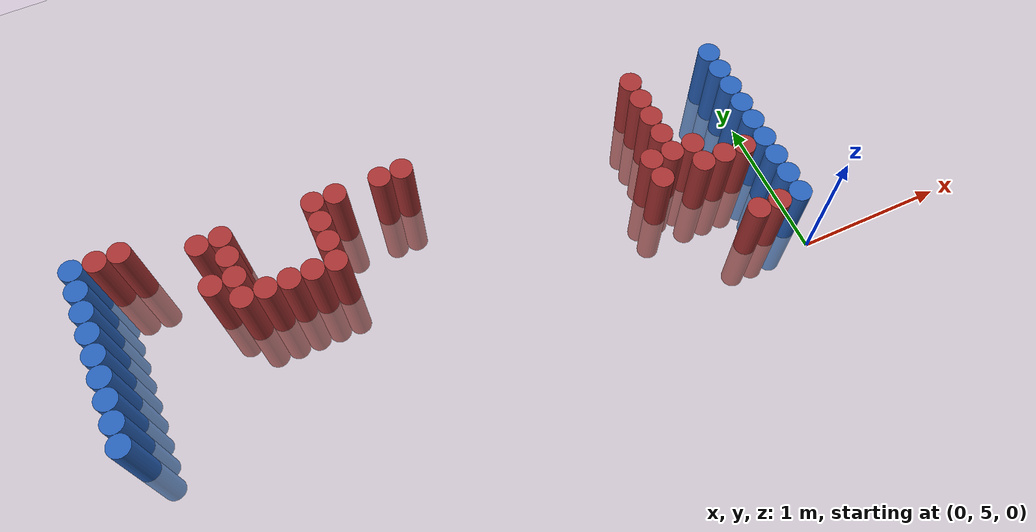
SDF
<sdf version="1.6">
 <world name="default">
  <model name="ground_plane">
   <static>1</static>
   <link name="link">
    <collision name="collision">
     <geometry><plane><normal>0 0 1</normal><size>100 100</size></plane></geometry>
     <surface><friction><ode><mu>100</mu><mu2>50</mu2></ode></friction></surface>
    </collision>
    <visual name="visual">
     <cast_shadows>0</cast_shadows>
     <geometry><plane><normal>0 0 1</normal><size>100 100</size></plane></geometry>
     <material>
      <script><uri>file://media/materials/scripts/gazebo.material</uri><name>Gazebo/Grey</name></script>
     </material>
    </visual>
   </link>
  </model>
  <model name="unit_cylinder_97">
   <static>1</static>
   <pose>-4.425000 5.325000 0.000000 0.000000 0.000000 0.000000</pose>
   <link name="link">
    <inertial>
     <mass>1</mass>
     <inertia><ixx>0.145833</ixx><ixy>0</ixy><ixz>0</ixz><iyy>0.145833</iyy><iyz>0</iyz><izz>0.125</izz></inertia>
    </inertial>
    <collision name="collision">
     <geometry><cylinder><radius>0.075000</radius><length>1</length></cylinder></geometry>
    </collision>
    <visual name="visual">
     <geometry><cylinder><radius>0.075000</radius><length>1</length></cylinder></geometry>
     <material>
      <ambient>0.152000 0.379000 0.720000 1</ambient>
      <diffuse>0.152000 0.379000 0.720000 1</diffuse>
     </material>
     <material>
      <script><name>Gazebo/Grey</name><uri>file://media/materials/scripts/gazebo.material</uri></script>
     </material>
    </visual>
   </link>
  </model>
  <model name="unit_cylinder_98">
   <static>1</static>
   <pose>-4.425000 5.475000 0.000000 0.000000 0.000000 0.000000</pose>
   <link name="link">
    <inertial>
     <mass>1</mass>
     <inertia><ixx>0.145833</ixx><ixy>0</ixy><ixz>0</ixz><iyy>0.145833</iyy><iyz>0</iyz><izz>0.125</izz></inertia>
    </inertial>
    <collision name="collision">
     <geometry><cylinder><radius>0.075000</radius><length>1</length></cylinder></geometry>
    </collision>
    <visual name="visual">
     <geometry><cylinder><radius>0.075000</radius><length>1</length></cylinder></geometry>
     <material>
      <ambient>0.152000 0.379000 0.720000 1</ambient>
      <diffuse>0.152000 0.379000 0.720000 1</diffuse>
     </material>
     <material>
      <script><name>Gazebo/Grey</name><uri>file://media/materials/scripts/gazebo.material</uri></script>
     </material>
    </visual>
   </link>
  </model>
  <model name="unit_cylinder_99">
   <static>1</static>
   <pose>-4.425000 5.625000 0.000000 0.000000 0.000000 0.000000</pose>
   <link name="link">
    <inertial>
     <mass>1</mass>
     <inertia><ixx>0.145833</ixx><ixy>0</ixy><ixz>0</ixz><iyy>0.145833</iyy><iyz>0</iyz><izz>0.125</izz></inertia>
    </inertial>
    <collision name="collision">
     <geometry><cylinder><radius>0.075000</radius><length>1</length></cylinder></geometry>
    </collision>
    <visual name="visual">
     <geometry><cylinder><radius>0.075000</radius><length>1</length></cylinder></geometry>
     <material>
      <ambient>0.152000 0.379000 0.720000 1</ambient>
      <diffuse>0.152000 0.379000 0.720000 1</diffuse>
     </material>
     <material>
      <script><name>Gazebo/Grey</name><uri>file://media/materials/scripts/gazebo.material</uri></script>
     </material>
    </visual>
   </link>
  </model>
  <model name="unit_cylinder_100">
   <static>1</static>
   <pose>-4.425000 5.775000 0.000000 0.000000 0.000000 0.000000</pose>
   <link name="link">
    <inertial>
     <mass>1</mass>
     <inertia><ixx>0.145833</ixx><ixy>0</ixy><ixz>0</ixz><iyy>0.145833</iyy><iyz>0</iyz><izz>0.125</izz></inertia>
    </inertial>
    <collision name="collision">
     <geometry><cylinder><radius>0.075000</radius><length>1</length></cylinder></geometry>
    </collision>
    <visual name="visual">
     <geometry><cylinder><radius>0.075000</radius><length>1</length></cylinder></geometry>
     <material>
      <ambient>0.152000 0.379000 0.720000 1</ambient>
      <diffuse>0.152000 0.379000 0.720000 1</diffuse>
     </material>
     <material>
      <script><name>Gazebo/Grey</name><uri>file://media/materials/scripts/gazebo.material</uri></script>
     </material>
    </visual>
   </link>
  </model>
  <model name="unit_cylinder_101">
   <static>1</static>
   <pose>-4.425000 5.925000 0.000000 0.000000 0.000000 0.000000</pose>
   <link name="link">
    <inertial>
     <mass>1</mass>
     <inertia><ixx>0.145833</ixx><ixy>0</ixy><ixz>0</ixz><iyy>0.145833</iyy><iyz>0</iyz><izz>0.125</izz></inertia>
    </inertial>
    <collision name="collision">
     <geometry><cylinder><radius>0.075000</radius><length>1</length></cylinder></geometry>
    </collision>
    <visual name="visual">
     <geometry><cylinder><radius>0.075000</radius><length>1</length></cylinder></geometry>
     <material>
      <ambient>0.152000 0.379000 0.720000 1</ambient>
      <diffuse>0.152000 0.379000 0.720000 1</diffuse>
     </material>
     <material>
      <script><name>Gazebo/Grey</name><uri>file://media/materials/scripts/gazebo.material</uri></script>
     </material>
    </visual>
   </link>
  </model>
  <model name="unit_cylinder_102">
   <static>1</static>
   <pose>-4.425000 6.075000 0.000000 0.000000 0.000000 0.000000</pose>
   <link name="link">
    <inertial>
     <mass>1</mass>
     <inertia><ixx>0.145833</ixx><ixy>0</ixy><ixz>0</ixz><iyy>0.145833</iyy><iyz>0</iyz><izz>0.125</izz></inertia>
    </inertial>
    <collision name="collision">
     <geometry><cylinder><radius>0.075000</radius><length>1</length></cylinder></geometry>
    </collision>
    <visual name="visual">
     <geometry><cylinder><radius>0.075000</radius><length>1</length></cylinder></geometry>
     <material>
      <ambient>0.152000 0.379000 0.720000 1</ambient>
      <diffuse>0.152000 0.379000 0.720000 1</diffuse>
     </material>
     <material>
      <script><name>Gazebo/Grey</name><uri>file://media/materials/scripts/gazebo.material</uri></script>
     </material>
    </visual>
   </link>
  </model>
  <model name="unit_cylinder_103">
   <static>1</static>
   <pose>-4.425000 6.225000 0.000000 0.000000 0.000000 0.000000</pose>
   <link name="link">
    <inertial>
     <mass>1</mass>
     <inertia><ixx>0.145833</ixx><ixy>0</ixy><ixz>0</ixz><iyy>0.145833</iyy><iyz>0</iyz><izz>0.125</izz></inertia>
    </inertial>
    <collision name="collision">
     <geometry><cylinder><radius>0.075000</radius><length>1</length></cylinder></geometry>
    </collision>
    <visual name="visual">
     <geometry><cylinder><radius>0.075000</radius><length>1</length></cylinder></geometry>
     <material>
      <ambient>0.152000 0.379000 0.720000 1</ambient>
      <diffuse>0.152000 0.379000 0.720000 1</diffuse>
     </material>
     <material>
      <script><name>Gazebo/Grey</name><uri>file://media/materials/scripts/gazebo.material</uri></script>
     </material>
    </visual>
   </link>
  </model>
  <model name="unit_cylinder_104">
   <static>1</static>
   <pose>-4.425000 6.375000 0.000000 0.000000 0.000000 0.000000</pose>
   <link name="link">
    <inertial>
     <mass>1</mass>
     <inertia><ixx>0.145833</ixx><ixy>0</ixy><ixz>0</ixz><iyy>0.145833</iyy><iyz>0</iyz><izz>0.125</izz></inertia>
    </inertial>
    <collision name="collision">
     <geometry><cylinder><radius>0.075000</radius><length>1</length></cylinder></geometry>
    </collision>
    <visual name="visual">
     <geometry><cylinder><radius>0.075000</radius><length>1</length></cylinder></geometry>
     <material>
      <ambient>0.152000 0.379000 0.720000 1</ambient>
      <diffuse>0.152000 0.379000 0.720000 1</diffuse>
     </material>
     <material>
      <script><name>Gazebo/Grey</name><uri>file://media/materials/scripts/gazebo.material</uri></script>
     </material>
    </visual>
   </link>
  </model>
  <model name="unit_cylinder_105">
   <static>1</static>
   <pose>-4.425000 6.525000 0.000000 0.000000 0.000000 0.000000</pose>
   <link name="link">
    <inertial>
     <mass>1</mass>
     <inertia><ixx>0.145833</ixx><ixy>0</ixy><ixz>0</ixz><iyy>0.145833</iyy><iyz>0</iyz><izz>0.125</izz></inertia>
    </inertial>
    <collision name="collision">
     <geometry><cylinder><radius>0.075000</radius><length>1</length></cylinder></geometry>
    </collision>
    <visual name="visual">
     <geometry><cylinder><radius>0.075000</radius><length>1</length></cylinder></geometry>
     <material>
      <ambient>0.152000 0.379000 0.720000 1</ambient>
      <diffuse>0.152000 0.379000 0.720000 1</diffuse>
     </material>
     <material>
      <script><name>Gazebo/Grey</name><uri>file://media/materials/scripts/gazebo.material</uri></script>
     </material>
    </visual>
   </link>
  </model>
  <model name="unit_cylinder_126">
   <static>1</static>
   <pose>-4.275000 6.525000 0.000000 0.000000 0.000000 0.000000</pose>
   <link name="link">
    <inertial>
     <mass>1</mass>
     <inertia><ixx>0.145833</ixx><ixy>0</ixy><ixz>0</ixz><iyy>0.145833</iyy><iyz>0</iyz><izz>0.125</izz></inertia>
    </inertial>
    <collision name="collision">
     <geometry><cylinder><radius>0.075000</radius><length>1</length></cylinder></geometry>
    </collision>
    <visual name="visual">
     <geometry><cylinder><radius>0.075000</radius><length>1</length></cylinder></geometry>
     <material>
      <ambient>0.648000 0.192000 0.192000 1</ambient>
      <diffuse>0.648000 0.192000 0.192000 1</diffuse>
     </material>
     <material>
      <script><name>Gazebo/Grey</name><uri>file://media/materials/scripts/gazebo.material</uri></script>
     </material>
    </visual>
   </link>
  </model>
  <model name="unit_cylinder_128">
   <static>1</static>
   <pose>-4.125000 6.525000 0.000000 0.000000 0.000000 0.000000</pose>
   <link name="link">
    <inertial>
     <mass>1</mass>
     <inertia><ixx>0.145833</ixx><ixy>0</ixy><ixz>0</ixz><iyy>0.145833</iyy><iyz>0</iyz><izz>0.125</izz></inertia>
    </inertial>
    <collision name="collision">
     <geometry><cylinder><radius>0.075000</radius><length>1</length></cylinder></geometry>
    </collision>
    <visual name="visual">
     <geometry><cylinder><radius>0.075000</radius><length>1</length></cylinder></geometry>
     <material>
      <ambient>0.648000 0.192000 0.192000 1</ambient>
      <diffuse>0.648000 0.192000 0.192000 1</diffuse>
     </material>
     <material>
      <script><name>Gazebo/Grey</name><uri>file://media/materials/scripts/gazebo.material</uri></script>
     </material>
    </visual>
   </link>
  </model>
  <model name="unit_cylinder_142">
   <static>1</static>
   <pose>-3.675000 6.075000 0.000000 0.000000 0.000000 0.000000</pose>
   <link name="link">
    <inertial>
     <mass>1</mass>
     <inertia><ixx>0.145833</ixx><ixy>0</ixy><ixz>0</ixz><iyy>0.145833</iyy><iyz>0</iyz><izz>0.125</izz></inertia>
    </inertial>
    <collision name="collision">
     <geometry><cylinder><radius>0.075000</radius><length>1</length></cylinder></geometry>
    </collision>
    <visual name="visual">
     <geometry><cylinder><radius>0.075000</radius><length>1</length></cylinder></geometry>
     <material>
      <ambient>0.648000 0.192000 0.192000 1</ambient>
      <diffuse>0.648000 0.192000 0.192000 1</diffuse>
     </material>
     <material>
      <script><name>Gazebo/Grey</name><uri>file://media/materials/scripts/gazebo.material</uri></script>
     </material>
    </visual>
   </link>
  </model>
  <model name="unit_cylinder_143">
   <static>1</static>
   <pose>-3.675000 6.375000 0.000000 0.000000 0.000000 0.000000</pose>
   <link name="link">
    <inertial>
     <mass>1</mass>
     <inertia><ixx>0.145833</ixx><ixy>0</ixy><ixz>0</ixz><iyy>0.145833</iyy><iyz>0</iyz><izz>0.125</izz></inertia>
    </inertial>
    <collision name="collision">
     <geometry><cylinder><radius>0.075000</radius><length>1</length></cylinder></geometry>
    </collision>
    <visual name="visual">
     <geometry><cylinder><radius>0.075000</radius><length>1</length></cylinder></geometry>
     <material>
      <ambient>0.648000 0.192000 0.192000 1</ambient>
      <diffuse>0.648000 0.192000 0.192000 1</diffuse>
     </material>
     <material>
      <script><name>Gazebo/Grey</name><uri>file://media/materials/scripts/gazebo.material</uri></script>
     </material>
    </visual>
   </link>
  </model>
  <model name="unit_cylinder_146">
   <static>1</static>
   <pose>-3.525000 5.925000 0.000000 0.000000 0.000000 0.000000</pose>
   <link name="link">
    <inertial>
     <mass>1</mass>
     <inertia><ixx>0.145833</ixx><ixy>0</ixy><ixz>0</ixz><iyy>0.145833</iyy><iyz>0</iyz><izz>0.125</izz></inertia>
    </inertial>
    <collision name="collision">
     <geometry><cylinder><radius>0.075000</radius><length>1</length></cylinder></geometry>
    </collision>
    <visual name="visual">
     <geometry><cylinder><radius>0.075000</radius><length>1</length></cylinder></geometry>
     <material>
      <ambient>0.648000 0.192000 0.192000 1</ambient>
      <diffuse>0.648000 0.192000 0.192000 1</diffuse>
     </material>
     <material>
      <script><name>Gazebo/Grey</name><uri>file://media/materials/scripts/gazebo.material</uri></script>
     </material>
    </visual>
   </link>
  </model>
  <model name="unit_cylinder_147">
   <static>1</static>
   <pose>-3.525000 6.075000 0.000000 0.000000 0.000000 0.000000</pose>
   <link name="link">
    <inertial>
     <mass>1</mass>
     <inertia><ixx>0.145833</ixx><ixy>0</ixy><ixz>0</ixz><iyy>0.145833</iyy><iyz>0</iyz><izz>0.125</izz></inertia>
    </inertial>
    <collision name="collision">
     <geometry><cylinder><radius>0.075000</radius><length>1</length></cylinder></geometry>
    </collision>
    <visual name="visual">
     <geometry><cylinder><radius>0.075000</radius><length>1</length></cylinder></geometry>
     <material>
      <ambient>0.648000 0.192000 0.192000 1</ambient>
      <diffuse>0.648000 0.192000 0.192000 1</diffuse>
     </material>
     <material>
      <script><name>Gazebo/Grey</name><uri>file://media/materials/scripts/gazebo.material</uri></script>
     </material>
    </visual>
   </link>
  </model>
  <model name="unit_cylinder_148">
   <static>1</static>
   <pose>-3.525000 6.225000 0.000000 0.000000 0.000000 0.000000</pose>
   <link name="link">
    <inertial>
     <mass>1</mass>
     <inertia><ixx>0.145833</ixx><ixy>0</ixy><ixz>0</ixz><iyy>0.145833</iyy><iyz>0</iyz><izz>0.125</izz></inertia>
    </inertial>
    <collision name="collision">
     <geometry><cylinder><radius>0.075000</radius><length>1</length></cylinder></geometry>
    </collision>
    <visual name="visual">
     <geometry><cylinder><radius>0.075000</radius><length>1</length></cylinder></geometry>
     <material>
      <ambient>0.648000 0.192000 0.192000 1</ambient>
      <diffuse>0.648000 0.192000 0.192000 1</diffuse>
     </material>
     <material>
      <script><name>Gazebo/Grey</name><uri>file://media/materials/scripts/gazebo.material</uri></script>
     </material>
    </visual>
   </link>
  </model>
  <model name="unit_cylinder_149">
   <static>1</static>
   <pose>-3.525000 6.375000 0.000000 0.000000 0.000000 0.000000</pose>
   <link name="link">
    <inertial>
     <mass>1</mass>
     <inertia><ixx>0.145833</ixx><ixy>0</ixy><ixz>0</ixz><iyy>0.145833</iyy><iyz>0</iyz><izz>0.125</izz></inertia>
    </inertial>
    <collision name="collision">
     <geometry><cylinder><radius>0.075000</radius><length>1</length></cylinder></geometry>
    </collision>
    <visual name="visual">
     <geometry><cylinder><radius>0.075000</radius><length>1</length></cylinder></geometry>
     <material>
      <ambient>0.648000 0.192000 0.192000 1</ambient>
      <diffuse>0.648000 0.192000 0.192000 1</diffuse>
     </material>
     <material>
      <script><name>Gazebo/Grey</name><uri>file://media/materials/scripts/gazebo.material</uri></script>
     </material>
    </visual>
   </link>
  </model>
  <model name="unit_cylinder_152">
   <static>1</static>
   <pose>-3.375000 5.925000 0.000000 0.000000 0.000000 0.000000</pose>
   <link name="link">
    <inertial>
     <mass>1</mass>
     <inertia><ixx>0.145833</ixx><ixy>0</ixy><ixz>0</ixz><iyy>0.145833</iyy><iyz>0</iyz><izz>0.125</izz></inertia>
    </inertial>
    <collision name="collision">
     <geometry><cylinder><radius>0.075000</radius><length>1</length></cylinder></geometry>
    </collision>
    <visual name="visual">
     <geometry><cylinder><radius>0.075000</radius><length>1</length></cylinder></geometry>
     <material>
      <ambient>0.648000 0.192000 0.192000 1</ambient>
      <diffuse>0.648000 0.192000 0.192000 1</diffuse>
     </material>
     <material>
      <script><name>Gazebo/Grey</name><uri>file://media/materials/scripts/gazebo.material</uri></script>
     </material>
    </visual>
   </link>
  </model>
  <model name="unit_cylinder_154">
   <static>1</static>
   <pose>-3.225000 5.925000 0.000000 0.000000 0.000000 0.000000</pose>
   <link name="link">
    <inertial>
     <mass>1</mass>
     <inertia><ixx>0.145833</ixx><ixy>0</ixy><ixz>0</ixz><iyy>0.145833</iyy><iyz>0</iyz><izz>0.125</izz></inertia>
    </inertial>
    <collision name="collision">
     <geometry><cylinder><radius>0.075000</radius><length>1</length></cylinder></geometry>
    </collision>
    <visual name="visual">
     <geometry><cylinder><radius>0.075000</radius><length>1</length></cylinder></geometry>
     <material>
      <ambient>0.648000 0.192000 0.192000 1</ambient>
      <diffuse>0.648000 0.192000 0.192000 1</diffuse>
     </material>
     <material>
      <script><name>Gazebo/Grey</name><uri>file://media/materials/scripts/gazebo.material</uri></script>
     </material>
    </visual>
   </link>
  </model>
  <model name="unit_cylinder_156">
   <static>1</static>
   <pose>-3.075000 5.925000 0.000000 0.000000 0.000000 0.000000</pose>
   <link name="link">
    <inertial>
     <mass>1</mass>
     <inertia><ixx>0.145833</ixx><ixy>0</ixy><ixz>0</ixz><iyy>0.145833</iyy><iyz>0</iyz><izz>0.125</izz></inertia>
    </inertial>
    <collision name="collision">
     <geometry><cylinder><radius>0.075000</radius><length>1</length></cylinder></geometry>
    </collision>
    <visual name="visual">
     <geometry><cylinder><radius>0.075000</radius><length>1</length></cylinder></geometry>
     <material>
      <ambient>0.648000 0.192000 0.192000 1</ambient>
      <diffuse>0.648000 0.192000 0.192000 1</diffuse>
     </material>
     <material>
      <script><name>Gazebo/Grey</name><uri>file://media/materials/scripts/gazebo.material</uri></script>
     </material>
    </visual>
   </link>
  </model>
  <model name="unit_cylinder_158">
   <static>1</static>
   <pose>-2.925000 5.925000 0.000000 0.000000 0.000000 0.000000</pose>
   <link name="link">
    <inertial>
     <mass>1</mass>
     <inertia><ixx>0.145833</ixx><ixy>0</ixy><ixz>0</ixz><iyy>0.145833</iyy><iyz>0</iyz><izz>0.125</izz></inertia>
    </inertial>
    <collision name="collision">
     <geometry><cylinder><radius>0.075000</radius><length>1</length></cylinder></geometry>
    </collision>
    <visual name="visual">
     <geometry><cylinder><radius>0.075000</radius><length>1</length></cylinder></geometry>
     <material>
      <ambient>0.648000 0.192000 0.192000 1</ambient>
      <diffuse>0.648000 0.192000 0.192000 1</diffuse>
     </material>
     <material>
      <script><name>Gazebo/Grey</name><uri>file://media/materials/scripts/gazebo.material</uri></script>
     </material>
    </visual>
   </link>
  </model>
  <model name="unit_cylinder_159">
   <static>1</static>
   <pose>-2.925000 6.075000 0.000000 0.000000 0.000000 0.000000</pose>
   <link name="link">
    <inertial>
     <mass>1</mass>
     <inertia><ixx>0.145833</ixx><ixy>0</ixy><ixz>0</ixz><iyy>0.145833</iyy><iyz>0</iyz><izz>0.125</izz></inertia>
    </inertial>
    <collision name="collision">
     <geometry><cylinder><radius>0.075000</radius><length>1</length></cylinder></geometry>
    </collision>
    <visual name="visual">
     <geometry><cylinder><radius>0.075000</radius><length>1</length></cylinder></geometry>
     <material>
      <ambient>0.648000 0.192000 0.192000 1</ambient>
      <diffuse>0.648000 0.192000 0.192000 1</diffuse>
     </material>
     <material>
      <script><name>Gazebo/Grey</name><uri>file://media/materials/scripts/gazebo.material</uri></script>
     </material>
    </visual>
   </link>
  </model>
  <model name="unit_cylinder_160">
   <static>1</static>
   <pose>-2.925000 6.225000 0.000000 0.000000 0.000000 0.000000</pose>
   <link name="link">
    <inertial>
     <mass>1</mass>
     <inertia><ixx>0.145833</ixx><ixy>0</ixy><ixz>0</ixz><iyy>0.145833</iyy><iyz>0</iyz><izz>0.125</izz></inertia>
    </inertial>
    <collision name="collision">
     <geometry><cylinder><radius>0.075000</radius><length>1</length></cylinder></geometry>
    </collision>
    <visual name="visual">
     <geometry><cylinder><radius>0.075000</radius><length>1</length></cylinder></geometry>
     <material>
      <ambient>0.648000 0.192000 0.192000 1</ambient>
      <diffuse>0.648000 0.192000 0.192000 1</diffuse>
     </material>
     <material>
      <script><name>Gazebo/Grey</name><uri>file://media/materials/scripts/gazebo.material</uri></script>
     </material>
    </visual>
   </link>
  </model>
  <model name="unit_cylinder_161">
   <static>1</static>
   <pose>-2.925000 6.375000 0.000000 0.000000 0.000000 0.000000</pose>
   <link name="link">
    <inertial>
     <mass>1</mass>
     <inertia><ixx>0.145833</ixx><ixy>0</ixy><ixz>0</ixz><iyy>0.145833</iyy><iyz>0</iyz><izz>0.125</izz></inertia>
    </inertial>
    <collision name="collision">
     <geometry><cylinder><radius>0.075000</radius><length>1</length></cylinder></geometry>
    </collision>
    <visual name="visual">
     <geometry><cylinder><radius>0.075000</radius><length>1</length></cylinder></geometry>
     <material>
      <ambient>0.648000 0.192000 0.192000 1</ambient>
      <diffuse>0.648000 0.192000 0.192000 1</diffuse>
     </material>
     <material>
      <script><name>Gazebo/Grey</name><uri>file://media/materials/scripts/gazebo.material</uri></script>
     </material>
    </visual>
   </link>
  </model>
  <model name="unit_cylinder_164">
   <static>1</static>
   <pose>-2.775000 6.375000 0.000000 0.000000 0.000000 0.000000</pose>
   <link name="link">
    <inertial>
     <mass>1</mass>
     <inertia><ixx>0.145833</ixx><ixy>0</ixy><ixz>0</ixz><iyy>0.145833</iyy><iyz>0</iyz><izz>0.125</izz></inertia>
    </inertial>
    <collision name="collision">
     <geometry><cylinder><radius>0.075000</radius><length>1</length></cylinder></geometry>
    </collision>
    <visual name="visual">
     <geometry><cylinder><radius>0.075000</radius><length>1</length></cylinder></geometry>
     <material>
      <ambient>0.648000 0.192000 0.192000 1</ambient>
      <diffuse>0.648000 0.192000 0.192000 1</diffuse>
     </material>
     <material>
      <script><name>Gazebo/Grey</name><uri>file://media/materials/scripts/gazebo.material</uri></script>
     </material>
    </visual>
   </link>
  </model>
  <model name="unit_cylinder_170">
   <static>1</static>
   <pose>-2.475000 6.375000 0.000000 0.000000 0.000000 0.000000</pose>
   <link name="link">
    <inertial>
     <mass>1</mass>
     <inertia><ixx>0.145833</ixx><ixy>0</ixy><ixz>0</ixz><iyy>0.145833</iyy><iyz>0</iyz><izz>0.125</izz></inertia>
    </inertial>
    <collision name="collision">
     <geometry><cylinder><radius>0.075000</radius><length>1</length></cylinder></geometry>
    </collision>
    <visual name="visual">
     <geometry><cylinder><radius>0.075000</radius><length>1</length></cylinder></geometry>
     <material>
      <ambient>0.648000 0.192000 0.192000 1</ambient>
      <diffuse>0.648000 0.192000 0.192000 1</diffuse>
     </material>
     <material>
      <script><name>Gazebo/Grey</name><uri>file://media/materials/scripts/gazebo.material</uri></script>
     </material>
    </visual>
   </link>
  </model>
  <model name="unit_cylinder_178">
   <static>1</static>
   <pose>-2.325000 6.375000 0.000000 0.000000 0.000000 0.000000</pose>
   <link name="link">
    <inertial>
     <mass>1</mass>
     <inertia><ixx>0.145833</ixx><ixy>0</ixy><ixz>0</ixz><iyy>0.145833</iyy><iyz>0</iyz><izz>0.125</izz></inertia>
    </inertial>
    <collision name="collision">
     <geometry><cylinder><radius>0.075000</radius><length>1</length></cylinder></geometry>
    </collision>
    <visual name="visual">
     <geometry><cylinder><radius>0.075000</radius><length>1</length></cylinder></geometry>
     <material>
      <ambient>0.648000 0.192000 0.192000 1</ambient>
      <diffuse>0.648000 0.192000 0.192000 1</diffuse>
     </material>
     <material>
      <script><name>Gazebo/Grey</name><uri>file://media/materials/scripts/gazebo.material</uri></script>
     </material>
    </visual>
   </link>
  </model>
  <model name="unit_cylinder_220">
   <static>1</static>
   <pose>-0.825000 5.625000 0.000000 0.000000 0.000000 0.000000</pose>
   <link name="link">
    <inertial>
     <mass>1</mass>
     <inertia><ixx>0.145833</ixx><ixy>0</ixy><ixz>0</ixz><iyy>0.145833</iyy><iyz>0</iyz><izz>0.125</izz></inertia>
    </inertial>
    <collision name="collision">
     <geometry><cylinder><radius>0.075000</radius><length>1</length></cylinder></geometry>
    </collision>
    <visual name="visual">
     <geometry><cylinder><radius>0.075000</radius><length>1</length></cylinder></geometry>
     <material>
      <ambient>0.648000 0.192000 0.192000 1</ambient>
      <diffuse>0.648000 0.192000 0.192000 1</diffuse>
     </material>
     <material>
      <script><name>Gazebo/Grey</name><uri>file://media/materials/scripts/gazebo.material</uri></script>
     </material>
    </visual>
   </link>
  </model>
  <model name="unit_cylinder_221">
   <static>1</static>
   <pose>-0.825000 5.775000 0.000000 0.000000 0.000000 0.000000</pose>
   <link name="link">
    <inertial>
     <mass>1</mass>
     <inertia><ixx>0.145833</ixx><ixy>0</ixy><ixz>0</ixz><iyy>0.145833</iyy><iyz>0</iyz><izz>0.125</izz></inertia>
    </inertial>
    <collision name="collision">
     <geometry><cylinder><radius>0.075000</radius><length>1</length></cylinder></geometry>
    </collision>
    <visual name="visual">
     <geometry><cylinder><radius>0.075000</radius><length>1</length></cylinder></geometry>
     <material>
      <ambient>0.648000 0.192000 0.192000 1</ambient>
      <diffuse>0.648000 0.192000 0.192000 1</diffuse>
     </material>
     <material>
      <script><name>Gazebo/Grey</name><uri>file://media/materials/scripts/gazebo.material</uri></script>
     </material>
    </visual>
   </link>
  </model>
  <model name="unit_cylinder_230">
   <static>1</static>
   <pose>-0.675000 5.775000 0.000000 0.000000 0.000000 0.000000</pose>
   <link name="link">
    <inertial>
     <mass>1</mass>
     <inertia><ixx>0.145833</ixx><ixy>0</ixy><ixz>0</ixz><iyy>0.145833</iyy><iyz>0</iyz><izz>0.125</izz></inertia>
    </inertial>
    <collision name="collision">
     <geometry><cylinder><radius>0.075000</radius><length>1</length></cylinder></geometry>
    </collision>
    <visual name="visual">
     <geometry><cylinder><radius>0.075000</radius><length>1</length></cylinder></geometry>
     <material>
      <ambient>0.648000 0.192000 0.192000 1</ambient>
      <diffuse>0.648000 0.192000 0.192000 1</diffuse>
     </material>
     <material>
      <script><name>Gazebo/Grey</name><uri>file://media/materials/scripts/gazebo.material</uri></script>
     </material>
    </visual>
   </link>
  </model>
  <model name="unit_cylinder_231">
   <static>1</static>
   <pose>-0.675000 5.925000 0.000000 0.000000 0.000000 0.000000</pose>
   <link name="link">
    <inertial>
     <mass>1</mass>
     <inertia><ixx>0.145833</ixx><ixy>0</ixy><ixz>0</ixz><iyy>0.145833</iyy><iyz>0</iyz><izz>0.125</izz></inertia>
    </inertial>
    <collision name="collision">
     <geometry><cylinder><radius>0.075000</radius><length>1</length></cylinder></geometry>
    </collision>
    <visual name="visual">
     <geometry><cylinder><radius>0.075000</radius><length>1</length></cylinder></geometry>
     <material>
      <ambient>0.648000 0.192000 0.192000 1</ambient>
      <diffuse>0.648000 0.192000 0.192000 1</diffuse>
     </material>
     <material>
      <script><name>Gazebo/Grey</name><uri>file://media/materials/scripts/gazebo.material</uri></script>
     </material>
    </visual>
   </link>
  </model>
  <model name="unit_cylinder_232">
   <static>1</static>
   <pose>-0.675000 6.075000 0.000000 0.000000 0.000000 0.000000</pose>
   <link name="link">
    <inertial>
     <mass>1</mass>
     <inertia><ixx>0.145833</ixx><ixy>0</ixy><ixz>0</ixz><iyy>0.145833</iyy><iyz>0</iyz><izz>0.125</izz></inertia>
    </inertial>
    <collision name="collision">
     <geometry><cylinder><radius>0.075000</radius><length>1</length></cylinder></geometry>
    </collision>
    <visual name="visual">
     <geometry><cylinder><radius>0.075000</radius><length>1</length></cylinder></geometry>
     <material>
      <ambient>0.648000 0.192000 0.192000 1</ambient>
      <diffuse>0.648000 0.192000 0.192000 1</diffuse>
     </material>
     <material>
      <script><name>Gazebo/Grey</name><uri>file://media/materials/scripts/gazebo.material</uri></script>
     </material>
    </visual>
   </link>
  </model>
  <model name="unit_cylinder_233">
   <static>1</static>
   <pose>-0.675000 6.225000 0.000000 0.000000 0.000000 0.000000</pose>
   <link name="link">
    <inertial>
     <mass>1</mass>
     <inertia><ixx>0.145833</ixx><ixy>0</ixy><ixz>0</ixz><iyy>0.145833</iyy><iyz>0</iyz><izz>0.125</izz></inertia>
    </inertial>
    <collision name="collision">
     <geometry><cylinder><radius>0.075000</radius><length>1</length></cylinder></geometry>
    </collision>
    <visual name="visual">
     <geometry><cylinder><radius>0.075000</radius><length>1</length></cylinder></geometry>
     <material>
      <ambient>0.648000 0.192000 0.192000 1</ambient>
      <diffuse>0.648000 0.192000 0.192000 1</diffuse>
     </material>
     <material>
      <script><name>Gazebo/Grey</name><uri>file://media/materials/scripts/gazebo.material</uri></script>
     </material>
    </visual>
   </link>
  </model>
  <model name="unit_cylinder_234">
   <static>1</static>
   <pose>-0.675000 6.375000 0.000000 0.000000 0.000000 0.000000</pose>
   <link name="link">
    <inertial>
     <mass>1</mass>
     <inertia><ixx>0.145833</ixx><ixy>0</ixy><ixz>0</ixz><iyy>0.145833</iyy><iyz>0</iyz><izz>0.125</izz></inertia>
    </inertial>
    <collision name="collision">
     <geometry><cylinder><radius>0.075000</radius><length>1</length></cylinder></geometry>
    </collision>
    <visual name="visual">
     <geometry><cylinder><radius>0.075000</radius><length>1</length></cylinder></geometry>
     <material>
      <ambient>0.648000 0.192000 0.192000 1</ambient>
      <diffuse>0.648000 0.192000 0.192000 1</diffuse>
     </material>
     <material>
      <script><name>Gazebo/Grey</name><uri>file://media/materials/scripts/gazebo.material</uri></script>
     </material>
    </visual>
   </link>
  </model>
  <model name="unit_cylinder_250">
   <static>1</static>
   <pose>-0.525000 5.625000 0.000000 0.000000 0.000000 0.000000</pose>
   <link name="link">
    <inertial>
     <mass>1</mass>
     <inertia><ixx>0.145833</ixx><ixy>0</ixy><ixz>0</ixz><iyy>0.145833</iyy><iyz>0</iyz><izz>0.125</izz></inertia>
    </inertial>
    <collision name="collision">
     <geometry><cylinder><radius>0.075000</radius><length>1</length></cylinder></geometry>
    </collision>
    <visual name="visual">
     <geometry><cylinder><radius>0.075000</radius><length>1</length></cylinder></geometry>
     <material>
      <ambient>0.648000 0.192000 0.192000 1</ambient>
      <diffuse>0.648000 0.192000 0.192000 1</diffuse>
     </material>
     <material>
      <script><name>Gazebo/Grey</name><uri>file://media/materials/scripts/gazebo.material</uri></script>
     </material>
    </visual>
   </link>
  </model>
  <model name="unit_cylinder_251">
   <static>1</static>
   <pose>-0.525000 5.775000 0.000000 0.000000 0.000000 0.000000</pose>
   <link name="link">
    <inertial>
     <mass>1</mass>
     <inertia><ixx>0.145833</ixx><ixy>0</ixy><ixz>0</ixz><iyy>0.145833</iyy><iyz>0</iyz><izz>0.125</izz></inertia>
    </inertial>
    <collision name="collision">
     <geometry><cylinder><radius>0.075000</radius><length>1</length></cylinder></geometry>
    </collision>
    <visual name="visual">
     <geometry><cylinder><radius>0.075000</radius><length>1</length></cylinder></geometry>
     <material>
      <ambient>0.648000 0.192000 0.192000 1</ambient>
      <diffuse>0.648000 0.192000 0.192000 1</diffuse>
     </material>
     <material>
      <script><name>Gazebo/Grey</name><uri>file://media/materials/scripts/gazebo.material</uri></script>
     </material>
    </visual>
   </link>
  </model>
  <model name="unit_cylinder_257">
   <static>1</static>
   <pose>-0.375000 5.175000 0.000000 0.000000 0.000000 0.000000</pose>
   <link name="link">
    <inertial>
     <mass>1</mass>
     <inertia><ixx>0.145833</ixx><ixy>0</ixy><ixz>0</ixz><iyy>0.145833</iyy><iyz>0</iyz><izz>0.125</izz></inertia>
    </inertial>
    <collision name="collision">
     <geometry><cylinder><radius>0.075000</radius><length>1</length></cylinder></geometry>
    </collision>
    <visual name="visual">
     <geometry><cylinder><radius>0.075000</radius><length>1</length></cylinder></geometry>
     <material>
      <ambient>0.648000 0.192000 0.192000 1</ambient>
      <diffuse>0.648000 0.192000 0.192000 1</diffuse>
     </material>
     <material>
      <script><name>Gazebo/Grey</name><uri>file://media/materials/scripts/gazebo.material</uri></script>
     </material>
    </visual>
   </link>
  </model>
  <model name="unit_cylinder_258">
   <static>1</static>
   <pose>-0.375000 5.625000 0.000000 0.000000 0.000000 0.000000</pose>
   <link name="link">
    <inertial>
     <mass>1</mass>
     <inertia><ixx>0.145833</ixx><ixy>0</ixy><ixz>0</ixz><iyy>0.145833</iyy><iyz>0</iyz><izz>0.125</izz></inertia>
    </inertial>
    <collision name="collision">
     <geometry><cylinder><radius>0.075000</radius><length>1</length></cylinder></geometry>
    </collision>
    <visual name="visual">
     <geometry><cylinder><radius>0.075000</radius><length>1</length></cylinder></geometry>
     <material>
      <ambient>0.648000 0.192000 0.192000 1</ambient>
      <diffuse>0.648000 0.192000 0.192000 1</diffuse>
     </material>
     <material>
      <script><name>Gazebo/Grey</name><uri>file://media/materials/scripts/gazebo.material</uri></script>
     </material>
    </visual>
   </link>
  </model>
  <model name="unit_cylinder_262">
   <static>1</static>
   <pose>-0.225000 5.175000 0.000000 0.000000 0.000000 0.000000</pose>
   <link name="link">
    <inertial>
     <mass>1</mass>
     <inertia><ixx>0.145833</ixx><ixy>0</ixy><ixz>0</ixz><iyy>0.145833</iyy><iyz>0</iyz><izz>0.125</izz></inertia>
    </inertial>
    <collision name="collision">
     <geometry><cylinder><radius>0.075000</radius><length>1</length></cylinder></geometry>
    </collision>
    <visual name="visual">
     <geometry><cylinder><radius>0.075000</radius><length>1</length></cylinder></geometry>
     <material>
      <ambient>0.648000 0.192000 0.192000 1</ambient>
      <diffuse>0.648000 0.192000 0.192000 1</diffuse>
     </material>
     <material>
      <script><name>Gazebo/Grey</name><uri>file://media/materials/scripts/gazebo.material</uri></script>
     </material>
    </visual>
   </link>
  </model>
  <model name="unit_cylinder_263">
   <static>1</static>
   <pose>-0.225000 5.625000 0.000000 0.000000 0.000000 0.000000</pose>
   <link name="link">
    <inertial>
     <mass>1</mass>
     <inertia><ixx>0.145833</ixx><ixy>0</ixy><ixz>0</ixz><iyy>0.145833</iyy><iyz>0</iyz><izz>0.125</izz></inertia>
    </inertial>
    <collision name="collision">
     <geometry><cylinder><radius>0.075000</radius><length>1</length></cylinder></geometry>
    </collision>
    <visual name="visual">
     <geometry><cylinder><radius>0.075000</radius><length>1</length></cylinder></geometry>
     <material>
      <ambient>0.648000 0.192000 0.192000 1</ambient>
      <diffuse>0.648000 0.192000 0.192000 1</diffuse>
     </material>
     <material>
      <script><name>Gazebo/Grey</name><uri>file://media/materials/scripts/gazebo.material</uri></script>
     </material>
    </visual>
   </link>
  </model>
  <model name="unit_cylinder_266">
   <static>1</static>
   <pose>-0.075000 5.175000 0.000000 0.000000 0.000000 0.000000</pose>
   <link name="link">
    <inertial>
     <mass>1</mass>
     <inertia><ixx>0.145833</ixx><ixy>0</ixy><ixz>0</ixz><iyy>0.145833</iyy><iyz>0</iyz><izz>0.125</izz></inertia>
    </inertial>
    <collision name="collision">
     <geometry><cylinder><radius>0.075000</radius><length>1</length></cylinder></geometry>
    </collision>
    <visual name="visual">
     <geometry><cylinder><radius>0.075000</radius><length>1</length></cylinder></geometry>
     <material>
      <ambient>0.152000 0.379000 0.720000 1</ambient>
      <diffuse>0.152000 0.379000 0.720000 1</diffuse>
     </material>
     <material>
      <script><name>Gazebo/Grey</name><uri>file://media/materials/scripts/gazebo.material</uri></script>
     </material>
    </visual>
   </link>
  </model>
  <model name="unit_cylinder_267">
   <static>1</static>
   <pose>-0.075000 5.325000 0.000000 0.000000 0.000000 0.000000</pose>
   <link name="link">
    <inertial>
     <mass>1</mass>
     <inertia><ixx>0.145833</ixx><ixy>0</ixy><ixz>0</ixz><iyy>0.145833</iyy><iyz>0</iyz><izz>0.125</izz></inertia>
    </inertial>
    <collision name="collision">
     <geometry><cylinder><radius>0.075000</radius><length>1</length></cylinder></geometry>
    </collision>
    <visual name="visual">
     <geometry><cylinder><radius>0.075000</radius><length>1</length></cylinder></geometry>
     <material>
      <ambient>0.152000 0.379000 0.720000 1</ambient>
      <diffuse>0.152000 0.379000 0.720000 1</diffuse>
     </material>
     <material>
      <script><name>Gazebo/Grey</name><uri>file://media/materials/scripts/gazebo.material</uri></script>
     </material>
    </visual>
   </link>
  </model>
  <model name="unit_cylinder_268">
   <static>1</static>
   <pose>-0.075000 5.475000 0.000000 0.000000 0.000000 0.000000</pose>
   <link name="link">
    <inertial>
     <mass>1</mass>
     <inertia><ixx>0.145833</ixx><ixy>0</ixy><ixz>0</ixz><iyy>0.145833</iyy><iyz>0</iyz><izz>0.125</izz></inertia>
    </inertial>
    <collision name="collision">
     <geometry><cylinder><radius>0.075000</radius><length>1</length></cylinder></geometry>
    </collision>
    <visual name="visual">
     <geometry><cylinder><radius>0.075000</radius><length>1</length></cylinder></geometry>
     <material>
      <ambient>0.152000 0.379000 0.720000 1</ambient>
      <diffuse>0.152000 0.379000 0.720000 1</diffuse>
     </material>
     <material>
      <script><name>Gazebo/Grey</name><uri>file://media/materials/scripts/gazebo.material</uri></script>
     </material>
    </visual>
   </link>
  </model>
  <model name="unit_cylinder_269">
   <static>1</static>
   <pose>-0.075000 5.625000 0.000000 0.000000 0.000000 0.000000</pose>
   <link name="link">
    <inertial>
     <mass>1</mass>
     <inertia><ixx>0.145833</ixx><ixy>0</ixy><ixz>0</ixz><iyy>0.145833</iyy><iyz>0</iyz><izz>0.125</izz></inertia>
    </inertial>
    <collision name="collision">
     <geometry><cylinder><radius>0.075000</radius><length>1</length></cylinder></geometry>
    </collision>
    <visual name="visual">
     <geometry><cylinder><radius>0.075000</radius><length>1</length></cylinder></geometry>
     <material>
      <ambient>0.152000 0.379000 0.720000 1</ambient>
      <diffuse>0.152000 0.379000 0.720000 1</diffuse>
     </material>
     <material>
      <script><name>Gazebo/Grey</name><uri>file://media/materials/scripts/gazebo.material</uri></script>
     </material>
    </visual>
   </link>
  </model>
  <model name="unit_cylinder_270">
   <static>1</static>
   <pose>-0.075000 5.775000 0.000000 0.000000 0.000000 0.000000</pose>
   <link name="link">
    <inertial>
     <mass>1</mass>
     <inertia><ixx>0.145833</ixx><ixy>0</ixy><ixz>0</ixz><iyy>0.145833</iyy><iyz>0</iyz><izz>0.125</izz></inertia>
    </inertial>
    <collision name="collision">
     <geometry><cylinder><radius>0.075000</radius><length>1</length></cylinder></geometry>
    </collision>
    <visual name="visual">
     <geometry><cylinder><radius>0.075000</radius><length>1</length></cylinder></geometry>
     <material>
      <ambient>0.152000 0.379000 0.720000 1</ambient>
      <diffuse>0.152000 0.379000 0.720000 1</diffuse>
     </material>
     <material>
      <script><name>Gazebo/Grey</name><uri>file://media/materials/scripts/gazebo.material</uri></script>
     </material>
    </visual>
   </link>
  </model>
  <model name="unit_cylinder_271">
   <static>1</static>
   <pose>-0.075000 5.925000 0.000000 0.000000 0.000000 0.000000</pose>
   <link name="link">
    <inertial>
     <mass>1</mass>
     <inertia><ixx>0.145833</ixx><ixy>0</ixy><ixz>0</ixz><iyy>0.145833</iyy><iyz>0</iyz><izz>0.125</izz></inertia>
    </inertial>
    <collision name="collision">
     <geometry><cylinder><radius>0.075000</radius><length>1</length></cylinder></geometry>
    </collision>
    <visual name="visual">
     <geometry><cylinder><radius>0.075000</radius><length>1</length></cylinder></geometry>
     <material>
      <ambient>0.152000 0.379000 0.720000 1</ambient>
      <diffuse>0.152000 0.379000 0.720000 1</diffuse>
     </material>
     <material>
      <script><name>Gazebo/Grey</name><uri>file://media/materials/scripts/gazebo.material</uri></script>
     </material>
    </visual>
   </link>
  </model>
  <model name="unit_cylinder_272">
   <static>1</static>
   <pose>-0.075000 6.075000 0.000000 0.000000 0.000000 0.000000</pose>
   <link name="link">
    <inertial>
     <mass>1</mass>
     <inertia><ixx>0.145833</ixx><ixy>0</ixy><ixz>0</ixz><iyy>0.145833</iyy><iyz>0</iyz><izz>0.125</izz></inertia>
    </inertial>
    <collision name="collision">
     <geometry><cylinder><radius>0.075000</radius><length>1</length></cylinder></geometry>
    </collision>
    <visual name="visual">
     <geometry><cylinder><radius>0.075000</radius><length>1</length></cylinder></geometry>
     <material>
      <ambient>0.152000 0.379000 0.720000 1</ambient>
      <diffuse>0.152000 0.379000 0.720000 1</diffuse>
     </material>
     <material>
      <script><name>Gazebo/Grey</name><uri>file://media/materials/scripts/gazebo.material</uri></script>
     </material>
    </visual>
   </link>
  </model>
  <model name="unit_cylinder_273">
   <static>1</static>
   <pose>-0.075000 6.225000 0.000000 0.000000 0.000000 0.000000</pose>
   <link name="link">
    <inertial>
     <mass>1</mass>
     <inertia><ixx>0.145833</ixx><ixy>0</ixy><ixz>0</ixz><iyy>0.145833</iyy><iyz>0</iyz><izz>0.125</izz></inertia>
    </inertial>
    <collision name="collision">
     <geometry><cylinder><radius>0.075000</radius><length>1</length></cylinder></geometry>
    </collision>
    <visual name="visual">
     <geometry><cylinder><radius>0.075000</radius><length>1</length></cylinder></geometry>
     <material>
      <ambient>0.152000 0.379000 0.720000 1</ambient>
      <diffuse>0.152000 0.379000 0.720000 1</diffuse>
     </material>
     <material>
      <script><name>Gazebo/Grey</name><uri>file://media/materials/scripts/gazebo.material</uri></script>
     </material>
    </visual>
   </link>
  </model>
  <model name="unit_cylinder_274">
   <static>1</static>
   <pose>-0.075000 6.375000 0.000000 0.000000 0.000000 0.000000</pose>
   <link name="link">
    <inertial>
     <mass>1</mass>
     <inertia><ixx>0.145833</ixx><ixy>0</ixy><ixz>0</ixz><iyy>0.145833</iyy><iyz>0</iyz><izz>0.125</izz></inertia>
    </inertial>
    <collision name="collision">
     <geometry><cylinder><radius>0.075000</radius><length>1</length></cylinder></geometry>
    </collision>
    <visual name="visual">
     <geometry><cylinder><radius>0.075000</radius><length>1</length></cylinder></geometry>
     <material>
      <ambient>0.152000 0.379000 0.720000 1</ambient>
      <diffuse>0.152000 0.379000 0.720000 1</diffuse>
     </material>
     <material>
      <script><name>Gazebo/Grey</name><uri>file://media/materials/scripts/gazebo.material</uri></script>
     </material>
    </visual>
   </link>
  </model>
 </world>
</sdf>
